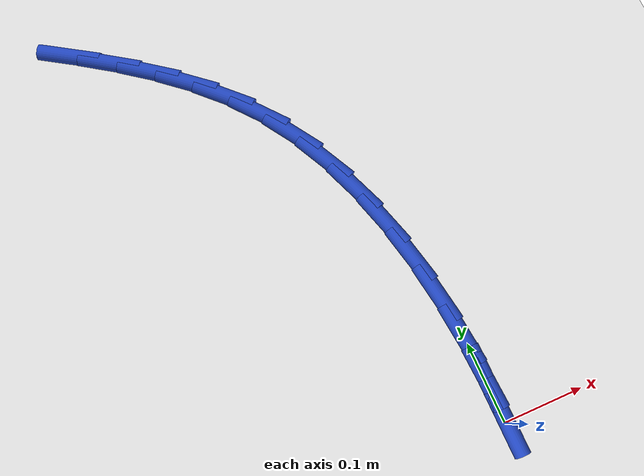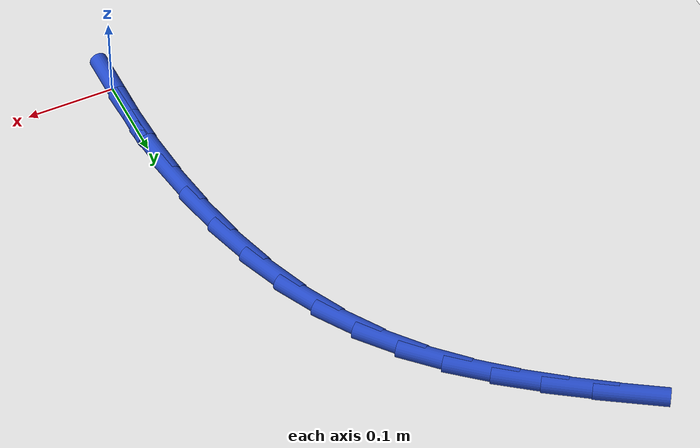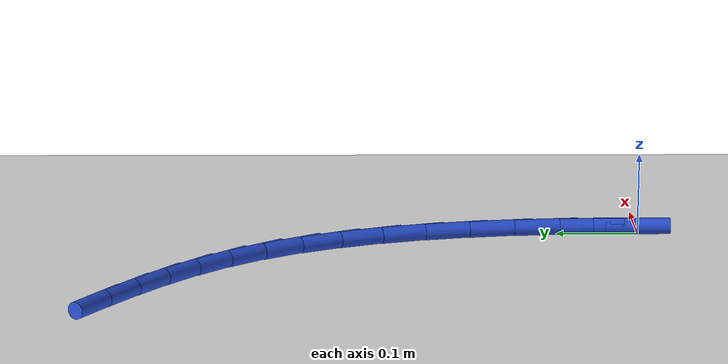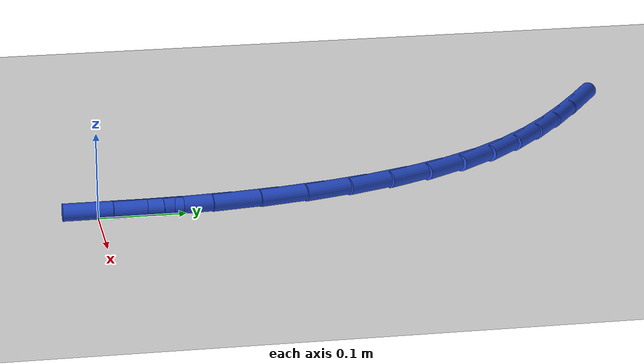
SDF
<sdf version="1.6">
 <world name="default">
  <model name="ground_plane">
   <static>1</static>
   <link name="link">
    <collision name="collision">
     <geometry><plane><normal>0 0 1</normal><size>100 100</size></plane></geometry>
     <surface><friction><ode><mu>100</mu><mu2>50</mu2></ode></friction></surface>
    </collision>
    <visual name="visual">
     <cast_shadows>0</cast_shadows>
     <geometry><plane><normal>0 0 1</normal><size>100 100</size></plane></geometry>
     <material>
      <script><uri>file://media/materials/scripts/gazebo.material</uri><name>Gazebo/WhiteGlow</name></script>
     </material>
    </visual>
   </link>
  </model>
  <model name="line">
   <link name="link_0">
    <pose>1.734723475976807e-18 -4.163336342344337e-17 0.01 0 1.57 -1.5659759354012892</pose>
    <collision name="collision">
     <geometry><cylinder><radius>0.01</radius><length>0.08</length></cylinder></geometry>
    </collision>
    <visual name="visual">
     <material>
      <script><name>Gazebo/Blue</name><uri>file://media/materials/scripts/gazebo.material</uri></script>
     </material>
     <geometry><cylinder><radius>0.01</radius><length>0.08</length></cylinder></geometry>
    </visual>
   </link>
   <link name="link_1">
    <pose>-0.000272990521959216 0.056632000442872504 0.01 0 1.57 -1.5202023875845057</pose>
    <collision name="collision">
     <geometry><cylinder><radius>0.01</radius><length>0.08</length></cylinder></geometry>
    </collision>
    <visual name="visual">
     <material>
      <script><name>Gazebo/Blue</name><uri>file://media/materials/scripts/gazebo.material</uri></script>
     </material>
     <geometry><cylinder><radius>0.01</radius><length>0.08</length></cylinder></geometry>
    </visual>
   </link>
   <link name="link_2">
    <pose>-0.0031373536651525973 0.11319843420944298 0.01 0 1.57 -1.4694682476484069</pose>
    <collision name="collision">
     <geometry><cylinder><radius>0.01</radius><length>0.08</length></cylinder></geometry>
    </collision>
    <visual name="visual">
     <material>
      <script><name>Gazebo/Blue</name><uri>file://media/materials/scripts/gazebo.material</uri></script>
     </material>
     <geometry><cylinder><radius>0.01</radius><length>0.08</length></cylinder></geometry>
    </visual>
   </link>
   <link name="link_3">
    <pose>-0.008832792315003887 0.1692138342047412 0.01 0 1.57 -1.4126803695060521</pose>
    <collision name="collision">
     <geometry><cylinder><radius>0.01</radius><length>0.08</length></cylinder></geometry>
    </collision>
    <visual name="visual">
     <material>
      <script><name>Gazebo/Blue</name><uri>file://media/materials/scripts/gazebo.material</uri></script>
     </material>
     <geometry><cylinder><radius>0.01</radius><length>0.08</length></cylinder></geometry>
    </visual>
   </link>
   <link name="link_4">
    <pose>-0.01759900935693688 0.22419273333379694 0.01 0 1.57 -1.348611577357339</pose>
    <collision name="collision">
     <geometry><cylinder><radius>0.01</radius><length>0.08</length></cylinder></geometry>
    </collision>
    <visual name="visual">
     <material>
      <script><name>Gazebo/Blue</name><uri>file://media/materials/scripts/gazebo.material</uri></script>
     </material>
     <geometry><cylinder><radius>0.01</radius><length>0.08</length></cylinder></geometry>
    </visual>
   </link>
   <link name="link_5">
    <pose>-0.029675707676375344 0.2776496645016401 0.01 0 1.57 -1.2759187762865267</pose>
    <collision name="collision">
     <geometry><cylinder><radius>0.01</radius><length>0.08</length></cylinder></geometry>
    </collision>
    <visual name="visual">
     <material>
      <script><name>Gazebo/Blue</name><uri>file://media/materials/scripts/gazebo.material</uri></script>
     </material>
     <geometry><cylinder><radius>0.01</radius><length>0.08</length></cylinder></geometry>
    </visual>
   </link>
   <link name="link_6">
    <pose>-0.045302590158743064 0.3290991606133006 0.01 0 1.57 -1.193214102112613</pose>
    <collision name="collision">
     <geometry><cylinder><radius>0.01</radius><length>0.08</length></cylinder></geometry>
    </collision>
    <visual name="visual">
     <material>
      <script><name>Gazebo/Blue</name><uri>file://media/materials/scripts/gazebo.material</uri></script>
     </material>
     <geometry><cylinder><radius>0.01</radius><length>0.08</length></cylinder></geometry>
    </visual>
   </link>
   <link name="link_7">
    <pose>-0.06471935968946377 0.378055754573808 0.01 0 1.57 -1.0992245166240053</pose>
    <collision name="collision">
     <geometry><cylinder><radius>0.01</radius><length>0.08</length></cylinder></geometry>
    </collision>
    <visual name="visual">
     <material>
      <script><name>Gazebo/Blue</name><uri>file://media/materials/scripts/gazebo.material</uri></script>
     </material>
     <geometry><cylinder><radius>0.01</radius><length>0.08</length></cylinder></geometry>
    </visual>
   </link>
   <link name="link_8">
    <pose>-0.08816571915396129 0.4240339792881923 0.01 0 1.57 -0.9930783490823807</pose>
    <collision name="collision">
     <geometry><cylinder><radius>0.01</radius><length>0.08</length></cylinder></geometry>
    </collision>
    <visual name="visual">
     <material>
      <script><name>Gazebo/Blue</name><uri>file://media/materials/scripts/gazebo.material</uri></script>
     </material>
     <geometry><cylinder><radius>0.01</radius><length>0.08</length></cylinder></geometry>
    </visual>
   </link>
   <link name="link_9">
    <pose>-0.11588135896802675 0.4665483842925973 0.01 0 1.57 -0.879815521483978</pose>
    <collision name="collision">
     <geometry><cylinder><radius>0.01</radius><length>0.08</length></cylinder></geometry>
    </collision>
    <visual name="visual">
     <material>
      <script><name>Gazebo/Blue</name><uri>file://media/materials/scripts/gazebo.material</uri></script>
     </material>
     <geometry><cylinder><radius>0.01</radius><length>0.08</length></cylinder></geometry>
    </visual>
   </link>
   <link name="link_10">
    <pose>-0.14794820719435445 0.5053239313898362 0.01 0 1.57 -0.7790913527609812</pose>
    <collision name="collision">
     <geometry><cylinder><radius>0.01</radius><length>0.08</length></cylinder></geometry>
    </collision>
    <visual name="visual">
     <material>
      <script><name>Gazebo/Blue</name><uri>file://media/materials/scripts/gazebo.material</uri></script>
     </material>
     <geometry><cylinder><radius>0.01</radius><length>0.08</length></cylinder></geometry>
    </visual>
   </link>
   <link name="link_11">
    <pose>-0.18389640008326494 0.5408215232690767 0.01 0 1.57 -0.6968715315606226</pose>
    <collision name="collision">
     <geometry><cylinder><radius>0.01</radius><length>0.08</length></cylinder></geometry>
    </collision>
    <visual name="visual">
     <material>
      <script><name>Gazebo/Blue</name><uri>file://media/materials/scripts/gazebo.material</uri></script>
     </material>
     <geometry><cylinder><radius>0.01</radius><length>0.08</length></cylinder></geometry>
    </visual>
   </link>
   <link name="link_12">
    <pose>-0.22313550581965216 0.5736628677763337 0.01 0 1.57 -0.6335408235626533</pose>
    <collision name="collision">
     <geometry><cylinder><radius>0.01</radius><length>0.08</length></cylinder></geometry>
    </collision>
    <visual name="visual">
     <material>
      <script><name>Gazebo/Blue</name><uri>file://media/materials/scripts/gazebo.material</uri></script>
     </material>
     <geometry><cylinder><radius>0.01</radius><length>0.08</length></cylinder></geometry>
    </visual>
   </link>
   <link name="link_13">
    <pose>-0.26507509258841 0.6044696727576221 0.01 0 1.57 -0.5884354583098865</pose>
    <collision name="collision">
     <geometry><cylinder><radius>0.01</radius><length>0.08</length></cylinder></geometry>
    </collision>
    <visual name="visual">
     <material>
      <script><name>Gazebo/Blue</name><uri>file://media/materials/scripts/gazebo.material</uri></script>
     </material>
     <geometry><cylinder><radius>0.01</radius><length>0.08</length></cylinder></geometry>
    </visual>
   </link>
   <link name="link_14">
    <pose>-0.3091247285744325 0.6338636460589573 0.01 0 1.57 -0.5605232488172629</pose>
    <collision name="collision">
     <geometry><cylinder><radius>0.01</radius><length>0.08</length></cylinder></geometry>
    </collision>
    <visual name="visual">
     <material>
      <script><name>Gazebo/Blue</name><uri>file://media/materials/scripts/gazebo.material</uri></script>
     </material>
     <geometry><cylinder><radius>0.01</radius><length>0.08</length></cylinder></geometry>
    </visual>
   </link>
   <link name="link_131">
    <pose>-0.00021660212564297843 0.05667888963212134 0.01 0 1.57 -1.5669747792555502</pose>
    <collision name="collision">
     <geometry><cylinder><radius>0.01</radius><length>0.08</length></cylinder></geometry>
    </collision>
    <visual name="visual">
     <material>
      <script><name>Gazebo/Blue</name><uri>file://media/materials/scripts/gazebo.material</uri></script>
     </material>
     <geometry><cylinder><radius>0.01</radius><length>0.08</length></cylinder></geometry>
    </visual>
   </link>
  </model>
 </world>
</sdf>
